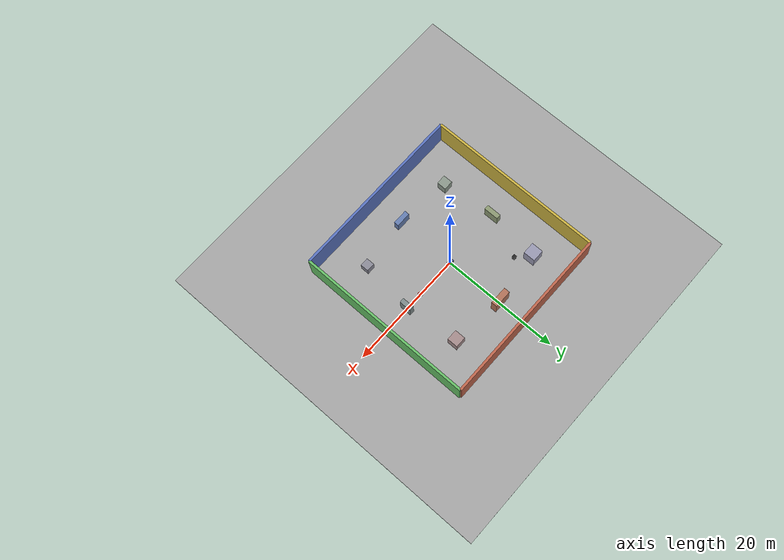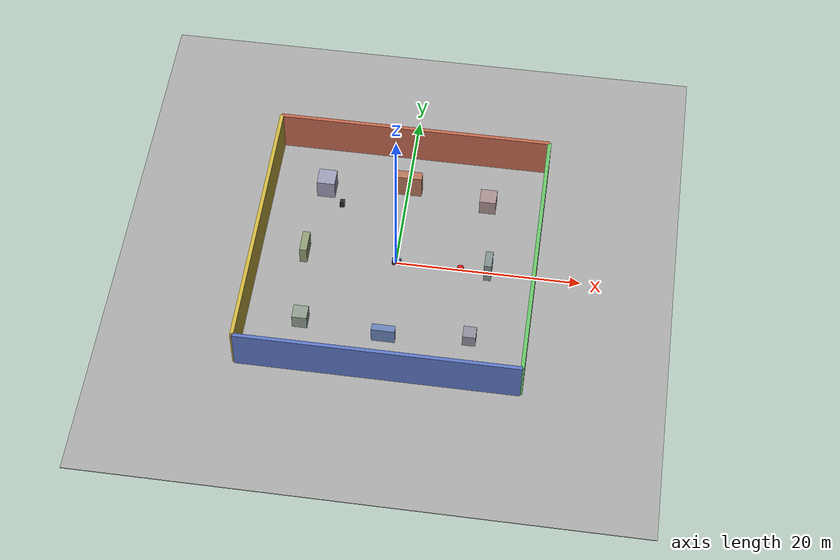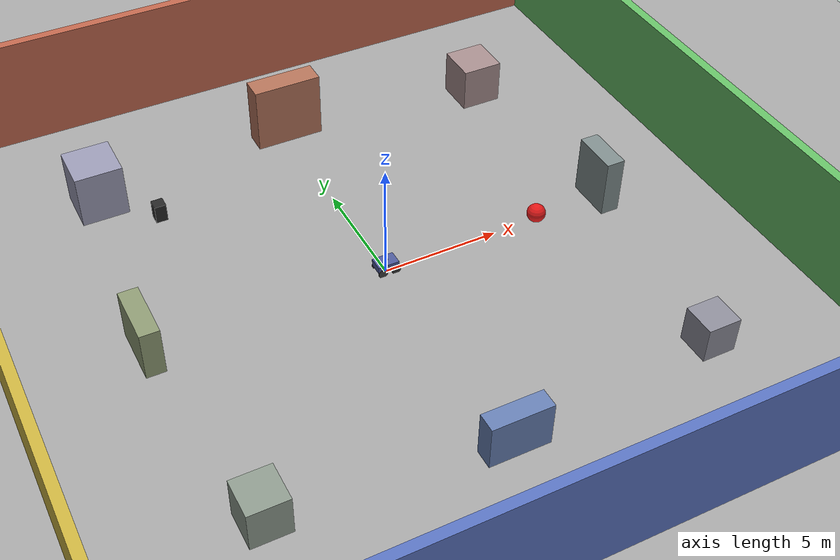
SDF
<sdf version="1.6">
  <world name="factory_open">
    <physics name="1ms" type="ode">
      <max_step_size>0.001</max_step_size>
      <real_time_factor>1.0</real_time_factor>
      <real_time_update_rate>1000</real_time_update_rate>
    </physics>
    <plugin filename="gz-sim-physics-system" name="gz::sim::systems::Physics"/>
    <plugin filename="gz-sim-sensors-system" name="gz::sim::systems::Sensors">
      <render_engine>ogre2</render_engine>
    </plugin>
    <plugin filename="gz-sim-scene-broadcaster-system" name="gz::sim::systems::SceneBroadcaster"/>
    <plugin filename="gz-sim-user-commands-system" name="gz::sim::systems::UserCommands"/>
    <plugin filename="gz-sim-imu-system" name="gz::sim::systems::Imu"/>
    <gravity>0 0 -9.81</gravity>
    <light type="directional" name="sun">
      <cast_shadows>true</cast_shadows><pose>0 0 15 0 0 0</pose>
      <diffuse>0.9 0.9 0.9</diffuse><direction>-0.4 0.2 -0.9</direction>
    </light>
    <model name="ground"><static>true</static>
      <link name="l"><collision name="c"><geometry><box><size>60 60 0.1</size></box></geometry></collision>
        <visual name="v"><geometry><box><size>60 60 0.1</size></box></geometry>
          <material><ambient>0.5 0.5 0.5</ambient><diffuse>0.65 0.65 0.65</diffuse></material></visual></link></model>

<!-- ================================================================
     布局: 30×30 围墙封闭 | 十字主走廊 | 四个开放房间区
================================================================ -->

<!-- ====== 外围围墙 ====== -->
<model name="wall_n"><static>true</static><pose>0 15 2.5 0 0 0</pose>
  <link name="l"><collision name="c"><geometry><box><size>30 0.4 5</size></box></geometry></collision>
    <visual name="v"><geometry><box><size>30 0.4 5</size></box></geometry>
      <material><ambient>0.7 0.35 0.25</ambient><diffuse>0.75 0.4 0.3</diffuse></material></visual></link></model>
<model name="wall_s"><static>true</static><pose>0 -15 2.5 0 0 0</pose>
  <link name="l"><collision name="c"><geometry><box><size>30 0.4 5</size></box></geometry></collision>
    <visual name="v"><geometry><box><size>30 0.4 5</size></box></geometry>
      <material><ambient>0.3 0.4 0.7</ambient><diffuse>0.35 0.45 0.75</diffuse></material></visual></link></model>
<model name="wall_e"><static>true</static><pose>15 0 2.5 0 0 1.57</pose>
  <link name="l"><collision name="c"><geometry><box><size>30 0.4 5</size></box></geometry></collision>
    <visual name="v"><geometry><box><size>30 0.4 5</size></box></geometry>
      <material><ambient>0.35 0.7 0.35</ambient><diffuse>0.4 0.75 0.4</diffuse></material></visual></link></model>
<model name="wall_w"><static>true</static><pose>-15 0 2.5 0 0 1.57</pose>
  <link name="l"><collision name="c"><geometry><box><size>30 0.4 5</size></box></geometry></collision>
    <visual name="v"><geometry><box><size>30 0.4 5</size></box></geometry>
      <material><ambient>0.75 0.65 0.2</ambient><diffuse>0.8 0.7 0.25</diffuse></material></visual></link></model>

<!-- ====== 内部障碍物 (v22: 全方块简化版 8个) ====== -->
<!-- 布局: 四角各1个, 四边中间各1个, 中央开阔留给球 -->

<model name="blk_nw"><static>true</static><pose>-9 9 1.2 0 0 0</pose>
  <link name="l"><collision name="c"><geometry><box><size>2.0 2.0 2.4</size></box></geometry></collision>
    <visual name="v"><geometry><box><size>2.0 2.0 2.4</size></box></geometry>
      <material><ambient>0.55 0.55 0.65</ambient><diffuse>0.6 0.6 0.7</diffuse></material></visual></link></model>

<model name="blk_ne"><static>true</static><pose>9 9 1.0 0 0 0</pose>
  <link name="l"><collision name="c"><geometry><box><size>1.8 1.8 2.0</size></box></geometry></collision>
    <visual name="v"><geometry><box><size>1.8 1.8 2.0</size></box></geometry>
      <material><ambient>0.6 0.5 0.5</ambient><diffuse>0.65 0.55 0.55</diffuse></material></visual></link></model>

<model name="blk_sw"><static>true</static><pose>-9 -9 0.9 0 0 0</pose>
  <link name="l"><collision name="c"><geometry><box><size>1.6 1.6 1.8</size></box></geometry></collision>
    <visual name="v"><geometry><box><size>1.6 1.6 1.8</size></box></geometry>
      <material><ambient>0.5 0.55 0.5</ambient><diffuse>0.55 0.6 0.55</diffuse></material></visual></link></model>

<model name="blk_se"><static>true</static><pose>9 -9 0.8 0 0 0</pose>
  <link name="l"><collision name="c"><geometry><box><size>1.4 1.4 1.6</size></box></geometry></collision>
    <visual name="v"><geometry><box><size>1.4 1.4 1.6</size></box></geometry>
      <material><ambient>0.5 0.5 0.55</ambient><diffuse>0.55 0.55 0.6</diffuse></material></visual></link></model>

<model name="blk_n"><static>true</static><pose>0 10 1.5 0 0 0</pose>
  <link name="l"><collision name="c"><geometry><box><size>3.0 1.0 3.0</size></box></geometry></collision>
    <visual name="v"><geometry><box><size>3.0 1.0 3.0</size></box></geometry>
      <material><ambient>0.65 0.4 0.3</ambient><diffuse>0.7 0.45 0.35</diffuse></material></visual></link></model>

<model name="blk_s"><static>true</static><pose>0 -10 1.0 0 0 0</pose>
  <link name="l"><collision name="c"><geometry><box><size>2.5 0.8 2.0</size></box></geometry></collision>
    <visual name="v"><geometry><box><size>2.5 0.8 2.0</size></box></geometry>
      <material><ambient>0.35 0.45 0.65</ambient><diffuse>0.4 0.5 0.7</diffuse></material></visual></link></model>

<model name="blk_w"><static>true</static><pose>-10 0 1.1 0 0 0</pose>
  <link name="l"><collision name="c"><geometry><box><size>0.8 2.5 2.2</size></box></geometry></collision>
    <visual name="v"><geometry><box><size>0.8 2.5 2.2</size></box></geometry>
      <material><ambient>0.5 0.55 0.4</ambient><diffuse>0.55 0.6 0.45</diffuse></material></visual></link></model>

<!-- 东侧中央方块 (机器人初始朝向这边, 离球较远) -->
<model name="blk_e"><static>true</static><pose>10 0 1.3 0 0 0</pose>
  <link name="l"><collision name="c"><geometry><box><size>0.8 2.0 2.6</size></box></geometry></collision>
    <visual name="v"><geometry><box><size>0.8 2.0 2.6</size></box></geometry>
      <material><ambient>0.45 0.5 0.5</ambient><diffuse>0.5 0.55 0.55</diffuse></material></visual></link></model>

<!-- ====== 检测目标: 红色球体 (开阔地带, 周围无方块) ====== -->
<model name="target_ball"><static>true</static>
  <pose>7 0 0.35 0 0 0</pose>
  <link name="ball">
    <visual name="v">
      <geometry><sphere><radius>0.4</radius></sphere></geometry>
      <material><ambient>0.9 0.1 0.1</ambient><diffuse>0.9 0.1 0.1</diffuse></material>
    </visual>
  </link>
</model>

<model name="target_chair"><static>true</static>
  <pose>-7 7 0.5 0 0 0</pose>
  <link name="chair">
    <visual name="v">
      <geometry><box><size>0.5 0.5 0.8</size></box></geometry>
      <material><ambient>0.1 0.1 0.1</ambient><diffuse>0.15 0.15 0.15</diffuse></material>
    </visual>
  </link>
</model>

<!-- ====== 差速轮式机器人 ====== -->
<model name="robot">
  <pose>0 0 0.20 0 0 0</pose>

  <link name="base_link">
    <inertial>
      <mass>4.0</mass>
      <inertia><ixx>0.8</ixx><iyy>0.8</iyy><izz>1.0</izz></inertia>
    </inertial>
    <!-- 车身 (轮轴上方) -->
    <collision name="body_collision">
      <pose>0 0 0.22 0 0 0</pose>
      <geometry><box><size>0.9 0.6 0.3</size></box></geometry>
      <surface><friction><ode><mu>1.0</mu><mu2>1.0</mu2></ode></friction></surface>
    </collision>
    <visual name="body_visual">
      <pose>0 0 0.22 0 0 0</pose>
      <geometry><box><size>0.9 0.6 0.3</size></box></geometry>
      <material><ambient>0.2 0.25 0.45</ambient><diffuse>0.3 0.35 0.6</diffuse></material>
    </visual>
    <!-- IMU -->
    <sensor name="imu_sensor" type="imu">
      <topic>/robot/imu</topic>
      <always_on>1</always_on>
      <update_rate>400</update_rate>
    </sensor>
  </link>

  <!-- ====== LiDAR: 车顶中央 ====== -->
  <link name="lidar_link">
    <pose>0 0 0.40 0 0 0</pose>
    <inertial><mass>0.3</mass><inertia><ixx>0.01</ixx><iyy>0.01</iyy><izz>0.01</izz></inertia></inertial>
    <visual name="lidar_visual">
      <geometry><cylinder><radius>0.08</radius><length>0.08</length></cylinder></geometry>
      <material><ambient>0.1 0.1 0.1</ambient><diffuse>0.2 0.2 0.2</diffuse></material>
    </visual>
    <sensor name="lidar_sensor" type="gpu_lidar">
      <topic>/robot/lidar</topic>
      <update_rate>10</update_rate>
      <lidar>
        <scan>
          <horizontal><samples>3600</samples><resolution>1</resolution>
            <min_angle>-3.14159</min_angle><max_angle>3.14159</max_angle></horizontal>
          <vertical><samples>16</samples><resolution>1</resolution>
            <min_angle>-0.261799</min_angle><max_angle>0.261799</max_angle></vertical>
        </scan>
        <range><min>0.3</min><max>50.0</max><resolution>0.02</resolution></range>
        <noise><type>gaussian</type><mean>0</mean><stddev>0.03</stddev></noise>
      </lidar>
      <always_on>1</always_on>
      <visualize>true</visualize>
    </sensor>
  </link>
  <joint name="lidar_joint" type="fixed">
    <parent>base_link</parent>
    <child>lidar_link</child>
  </joint>

  <!-- ====== Camera: 车身前方 ====== -->
  <link name="camera_link">
    <pose>0.42 0 0.30 0 0 0</pose>
    <inertial><mass>0.05</mass>
      <inertia><ixx>0.0001</ixx><iyy>0.0001</iyy><izz>0.0001</izz></inertia></inertial>
    <visual name="camera_visual">
      <geometry><box><size>0.06 0.04 0.03</size></box></geometry>
      <material><ambient>0.1 0.1 0.1</ambient><diffuse>0.2 0.2 0.2</diffuse></material>
    </visual>
    <sensor name="camera_sensor" type="camera">
      <topic>/robot/camera</topic>
      <camera>
        <horizontal_fov>1.047</horizontal_fov>
        <image><width>640</width><height>480</height><format>R8G8B8</format></image>
        <clip><near>0.1</near><far>100</far></clip>
      </camera>
      <always_on>1</always_on>
      <update_rate>30</update_rate>
      <visualize>true</visualize>
    </sensor>
  </link>
  <joint name="camera_joint" type="fixed">
    <parent>base_link</parent>
    <child>camera_link</child>
  </joint>

  <!-- ====== DiffDrive 插件 ====== -->
  <plugin filename="gz-sim-diff-drive-system" name="gz::sim::systems::DiffDrive">
    <left_joint>rear_left_joint</left_joint>
    <right_joint>rear_right_joint</right_joint>
    <wheel_separation>0.60</wheel_separation>
    <wheel_radius>0.20</wheel_radius>
    <max_linear_acceleration>3.0</max_linear_acceleration>
    <max_angular_acceleration>4.0</max_angular_acceleration>
    <odom_publish_frequency>30</odom_publish_frequency>
  </plugin>

  <!-- ====== 后左驱动轮 ====== -->
  <link name="rear_left_wheel">
    <pose>-0.25 -0.30 0.00 0 0 0</pose>
    <inertial><mass>0.2</mass>
      <inertia><ixx>0.008</ixx><iyy>0.008</iyy><izz>0.016</izz></inertia></inertial>
    <collision name="c">
      <pose>0 0 0 -1.5707 0 0</pose>
      <geometry><cylinder><radius>0.20</radius><length>0.06</length></cylinder></geometry>
      <surface><friction><ode><mu>1.0</mu><mu2>1.0</mu2></ode></friction></surface>
    </collision>
    <visual name="v">
      <pose>0 0 0 -1.5707 0 0</pose>
      <geometry><cylinder><radius>0.20</radius><length>0.06</length></cylinder></geometry>
      <material><ambient>0.15 0.15 0.15</ambient><diffuse>0.25 0.25 0.25</diffuse></material>
    </visual>
  </link>
  <joint name="rear_left_joint" type="revolute">
    <parent>base_link</parent>
    <child>rear_left_wheel</child>
    <axis><xyz>0 1 0</xyz></axis>
    <dynamics><damping>6.0</damping><friction>2.0</friction></dynamics>
  </joint>

  <!-- ====== 后右驱动轮 ====== -->
  <link name="rear_right_wheel">
    <pose>-0.25 0.30 0.00 0 0 0</pose>
    <inertial><mass>0.2</mass>
      <inertia><ixx>0.008</ixx><iyy>0.008</iyy><izz>0.016</izz></inertia></inertial>
    <collision name="c">
      <pose>0 0 0 -1.5707 0 0</pose>
      <geometry><cylinder><radius>0.20</radius><length>0.06</length></cylinder></geometry>
      <surface><friction><ode><mu>1.0</mu><mu2>1.0</mu2></ode></friction></surface>
    </collision>
    <visual name="v">
      <pose>0 0 0 -1.5707 0 0</pose>
      <geometry><cylinder><radius>0.20</radius><length>0.06</length></cylinder></geometry>
      <material><ambient>0.15 0.15 0.15</ambient><diffuse>0.25 0.25 0.25</diffuse></material>
    </visual>
  </link>
  <joint name="rear_right_joint" type="revolute">
    <parent>base_link</parent>
    <child>rear_right_wheel</child>
    <axis><xyz>0 1 0</xyz></axis>
    <dynamics><damping>6.0</damping><friction>2.0</friction></dynamics>
  </joint>

  <!-- ====== 前左从动轮 ====== -->
  <link name="front_left_wheel">
    <pose>0.32 -0.30 0.00 0 0 0</pose>
    <inertial><mass>0.5</mass>
      <inertia><ixx>0.005</ixx><iyy>0.005</iyy><izz>0.010</izz></inertia></inertial>
    <collision name="c">
      <pose>0 0 0 -1.5707 0 0</pose>
      <geometry><cylinder><radius>0.20</radius><length>0.06</length></cylinder></geometry>
      <surface><friction><ode><mu>0.1</mu><mu2>0.1</mu2></ode></friction></surface>
    </collision>
    <visual name="v">
      <pose>0 0 0 -1.5707 0 0</pose>
      <geometry><cylinder><radius>0.20</radius><length>0.06</length></cylinder></geometry>
      <material><ambient>0.12 0.12 0.12</ambient><diffuse>0.20 0.20 0.20</diffuse></material>
    </visual>
  </link>
  <joint name="front_left_joint" type="revolute">
    <parent>base_link</parent>
    <child>front_left_wheel</child>
    <axis><xyz>0 1 0</xyz></axis>
    <dynamics><damping>2.0</damping><friction>1.0</friction></dynamics>
  </joint>

  <!-- ====== 前右从动轮 ====== -->
  <link name="front_right_wheel">
    <pose>0.32 0.30 0.00 0 0 0</pose>
    <inertial><mass>0.5</mass>
      <inertia><ixx>0.005</ixx><iyy>0.005</iyy><izz>0.010</izz></inertia></inertial>
    <collision name="c">
      <pose>0 0 0 -1.5707 0 0</pose>
      <geometry><cylinder><radius>0.20</radius><length>0.06</length></cylinder></geometry>
      <surface><friction><ode><mu>0.1</mu><mu2>0.1</mu2></ode></friction></surface>
    </collision>
    <visual name="v">
      <pose>0 0 0 -1.5707 0 0</pose>
      <geometry><cylinder><radius>0.20</radius><length>0.06</length></cylinder></geometry>
      <material><ambient>0.12 0.12 0.12</ambient><diffuse>0.20 0.20 0.20</diffuse></material>
    </visual>
  </link>
  <joint name="front_right_joint" type="revolute">
    <parent>base_link</parent>
    <child>front_right_wheel</child>
    <axis><xyz>0 1 0</xyz></axis>
    <dynamics><damping>2.0</damping><friction>1.0</friction></dynamics>
  </joint>
</model>

  </world>
</sdf>
